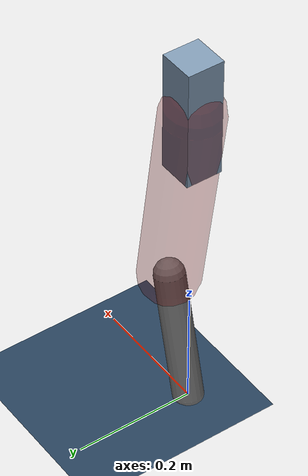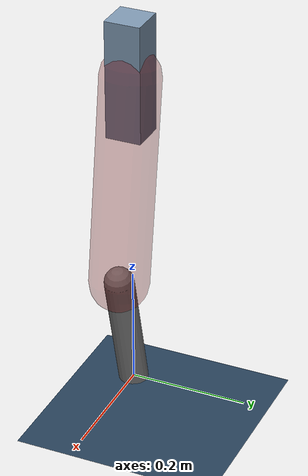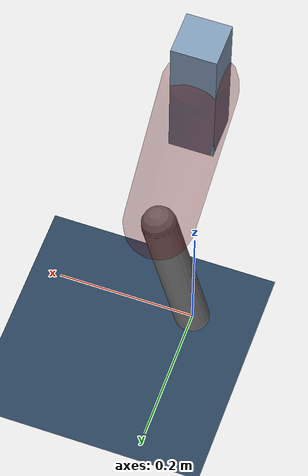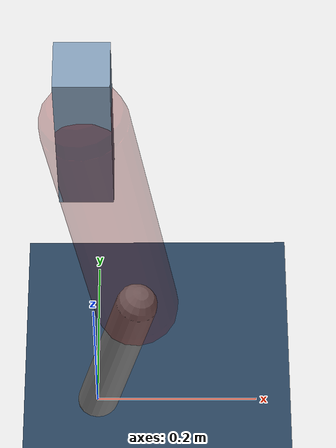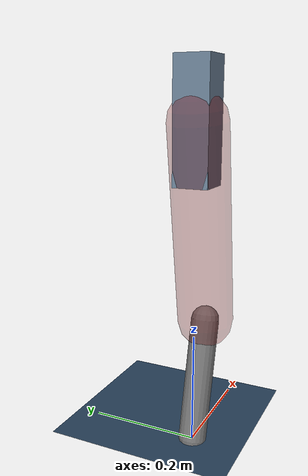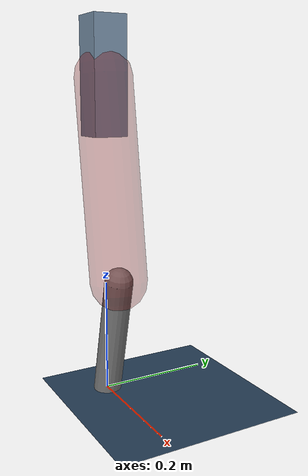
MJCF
<mujoco model="Hopper2D">
	<compiler inertiafromgeom="true" angle="radian" />
	<option timestep="0.001" integrator="implicit" cone="elliptic" solver="Newton" tolerance="1e-10" />

	<default>
		<geom contype="1" conaffinity="1" condim="3" friction="2 0.005 0.0001" solref="0.005 1" />
		<joint limited="true" damping="0.1" />
	</default>

	<asset>
		<texture name="skybox" type="skybox" builtin="gradient" rgb1=".4 .6 .8" rgb2="0 0 0" width="800" height="800" />
		<texture name="grid" type="2d" builtin="checker" rgb1=".1 .2 .3" rgb2=".2 .3 .4" width="300" height="300" mark="edge" markrgb=".2 .3 .4" />
		<material name="ground" texture="grid" texrepeat="1 1" texuniform="true" reflectance="0.1" />
		<material name="leg" rgba="0.5 0.6 0.7 1" />
	</asset>

	<worldbody>

		<geom name="floor" type="plane" size="5 5 0.25" material="ground" />

		<light directional="false" diffuse="0.8 0.8 0.8" specular="0.3 0.3 0.3" pos="0 0 2" dir="0 0 -1" />
		<light mode="targetbodycom" target="base" directional="false" diffuse="0.8 0.8 0.8" specular="0.3 0.3 0.3" pos="0 0 2" dir="0 0 -1" />

		<camera name="fixed" pos="0 -2 1" xyaxes="1 0 0 0 0 1" />
		<camera name="tracking" mode="trackcom" pos="0 -3 1" />

		<body name="root" pos="0 0 0.5619922804650488">
			<joint name="slide_x" type="slide" axis="1 0 0" range="-100 100" />
			<joint name="slide_z" type="slide" axis="0 0 1" range="0 10" />

			<body name="base" pos="0 0 0">
				<geom name="torso" type="box" size="0.03 0.03 0.1" mass="2.851" material="leg" />

				<body name="link1" pos="0 0 0" euler="0 1.4221173856343872 0">
					<joint type="hinge" axis="0 -1 0" pos="0 0 0" name="hinge1" limited="true" range="-3.14 3.14" stiffness="0" damping="0.1" />
					<geom name="thigh" type="capsule" fromto="0 0 0 0.3499929479985304 0 0" size="0.05" rgba="0.5 0 0 0.3" mass="1.1266802543958854" />

					<body name="link2" pos="0.3499929479985304 0 0" euler="0 0.38439272138450675 0">
						<joint type="hinge" axis="0 -1 0" pos="0 0 0" name="hinge2" limited="true" range="-3.14 3.14" stiffness="0" damping="0.1" />
						<geom name="shank" type="capsule" fromto="0 0 0 0.22199933246651843 0 0" size="0.025" mass="0.41929946597321477" />

					</body>
				</body>
			</body>
		</body>
	</worldbody>

	<actuator>
		<motor name="torque1" joint="hinge1" ctrlrange="-153.11594934793422 153.11594934793422" ctrllimited="true" gear="1" />
		<motor name="torque2" joint="hinge2" ctrlrange="-123.49655524874584 123.49655524874584" ctrllimited="true" gear="1" />
	</actuator>
</mujoco>
